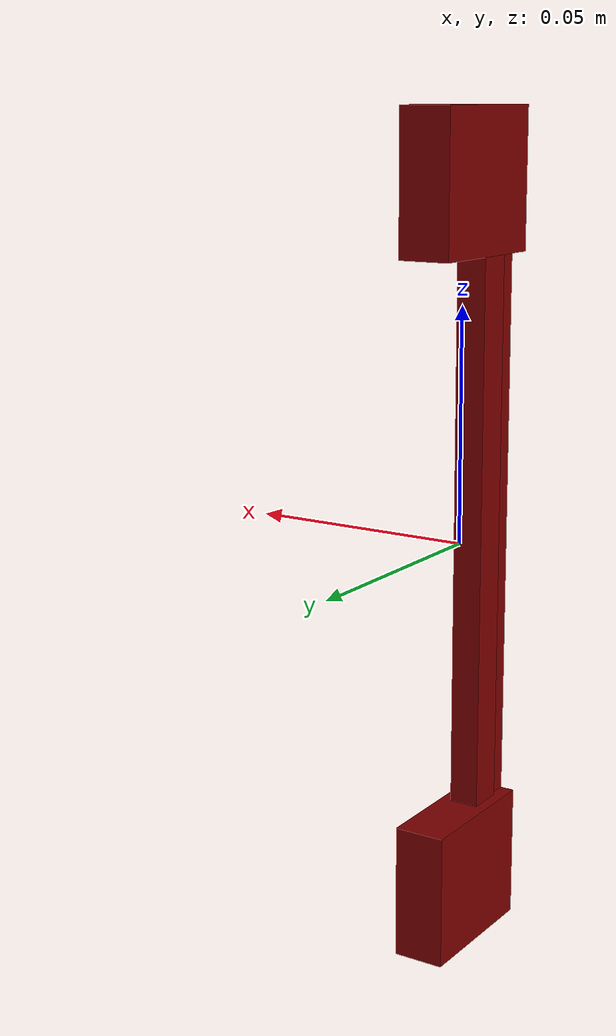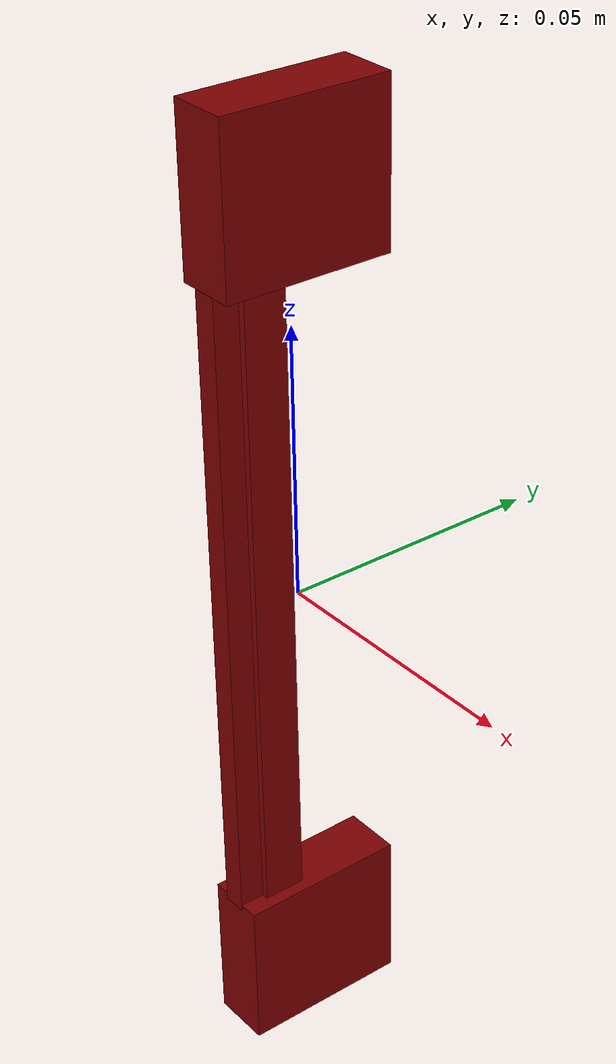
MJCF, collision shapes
<?xml version='1.0' encoding='UTF-8'?>
<mujoco model="model">
  <option timestep="0.002" gravity="0.0 0.0 -9.81"/>
  <compiler angle="radian"/>
  <asset>
    <mesh file="visuals/CabinetHandle008.obj" name="CabinetHandle008_vis"/>
    <texture file="visuals/T_BC001.png" name="tex" type="2d"/>
    <material name="mat" rgba="1 1 1 1.0" texture="tex" shininess="-1023.0" specular="0.3103448502657381"/>
  </asset>
  <default>
    <default class="visual">
      <geom conaffinity="0" contype="0" group="1" type="mesh"/>
    </default>
    <default class="collision">
      <geom group="0" rgba="0.5 0 0 0.5" density="1.0" solref="0.004 1" solimp="0.998 0.998 0.001"/>
    </default>
    <default class="spawn">
      <geom group="0" rgba="1 1 1 0.5" contype="0" conaffinity="0"/>
      <site group="0" rgba="1 1 1 0.5"/>
    </default>
    <default class="region">
      <geom group="1" conaffinity="0" contype="0" rgba="0 1 0 0" mass="0"/>
    </default>
  </default>
  <worldbody>
    <body>
      <body name="object">
        <geom mesh="CabinetHandle008_vis" type="mesh" solimp="0.998 0.998 0.001" solref="0.001 1" friction="0.95 0.3 0.1" class="visual" material="mat"/>
        <geom type="box" pos="-0.00015163334319368005 3.080213718931191e-05 0.07467527687549591" size="0.005627179052680731 0.015856904909014702 0.014748484827578068" quat="1.0 0.0 0.0 0.0" class="collision"/>
        <geom type="box" pos="-0.00015163334319368005 3.080213718931191e-05 -0.07461473345756531" size="0.005627179052680731 0.015856904909014702 0.014748484827578068" quat="1.0 0.0 0.0 0.0" class="collision"/>
        <geom type="box" pos="-0.00015163334319368005 -0.007118581794202328 0.0004630468029063195" size="0.003262025536969304 0.003999598789960146 0.060499440878629684" quat="1.0 0.0 0.0 0.0" class="collision"/>
        <geom type="box" pos="-0.0003878959978464991 -0.013559379614889622 -0.0005074074724689126" size="0.002267927397042513 0.002373497001826763 0.060499440878629684" quat="1.0 0.0 0.0 0.0" class="collision"/>
        <geom class="region" name="reg_main" type="box" pos="-4.773028194904327e-09 1.862645149230957e-09 0.0" size="0.006778088700026274 0.016731705352663995 0.0901624465584755"/>
      </body>
    </body>
  </worldbody>
  <actuator/>
</mujoco>
